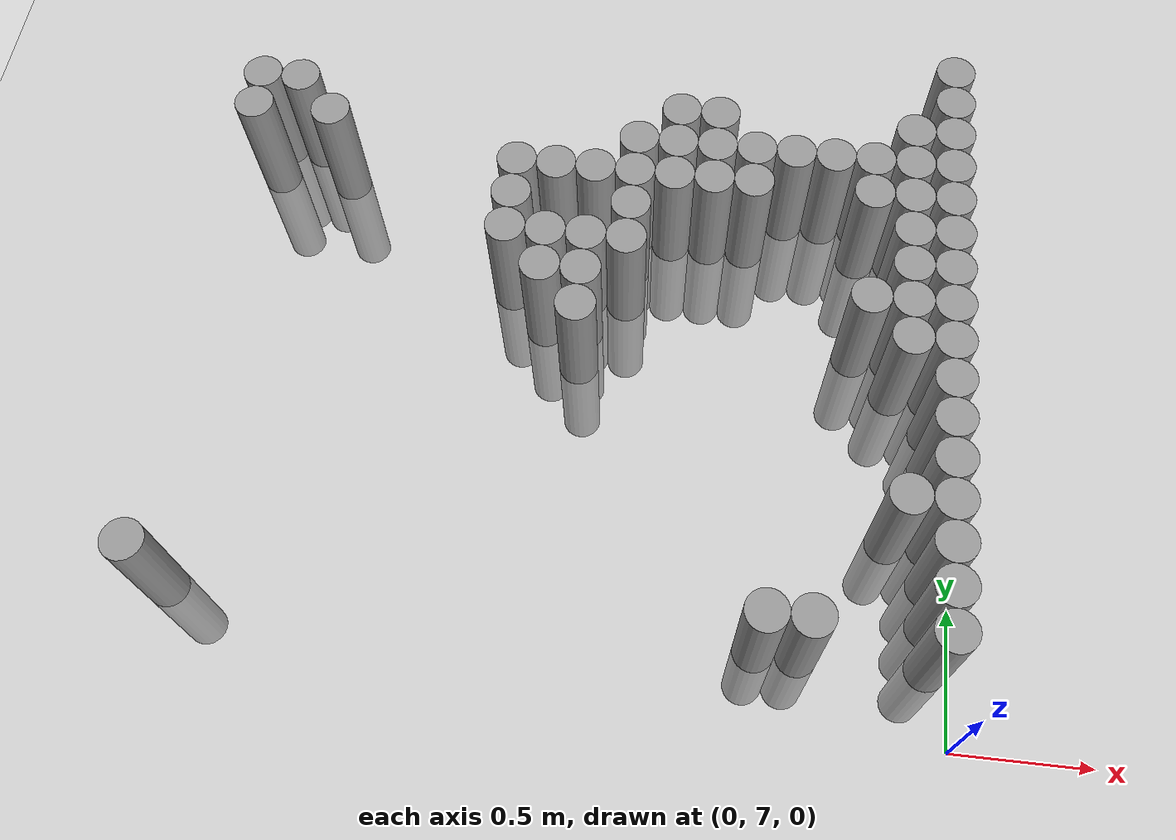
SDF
<sdf version="1.6">
 <world name="default">
  <model name="ground_plane">
   <static>1</static>
   <static>1</static>
   <link name="link">
    <collision name="collision">
     <geometry><plane><normal>0 0 1</normal><size>100 100</size></plane></geometry>
     <surface><friction><ode><mu>100</mu><mu2>50</mu2></ode></friction></surface>
    </collision>
    <visual name="visual">
     <cast_shadows>0</cast_shadows>
     <geometry><plane><normal>0 0 1</normal><size>100 100</size></plane></geometry>
     <material>
      <script><uri>file://media/materials/scripts/gazebo.material</uri><name>Gazebo/Grey</name></script>
     </material>
    </visual>
   </link>
  </model>
  <model name="unit_cylinder_186">
   <static>1</static>
   <pose>-2.775000 7.275000 0.000000 0.000000 0.000000 0.000000</pose>
   <link name="link">
    <inertial>
     <mass>1</mass>
     <inertia><ixx>0.145833</ixx><ixy>0</ixy><ixz>0</ixz><iyy>0.145833</iyy><iyz>0</iyz><izz>0.125</izz></inertia>
    </inertial>
    <collision name="collision">
     <geometry><cylinder><radius>0.075000</radius><length>1</length></cylinder></geometry>
    </collision>
    <visual name="visual">
     <geometry><cylinder><radius>0.075000</radius><length>1</length></cylinder></geometry>
     <material>
      <script><name>Gazebo/Grey</name><uri>file://media/materials/scripts/gazebo.material</uri></script>
     </material>
    </visual>
   </link>
  </model>
  <model name="unit_cylinder_187">
   <static>1</static>
   <pose>-2.775000 9.075000 0.000000 0.000000 0.000000 0.000000</pose>
   <link name="link">
    <inertial>
     <mass>1</mass>
     <inertia><ixx>0.145833</ixx><ixy>0</ixy><ixz>0</ixz><iyy>0.145833</iyy><iyz>0</iyz><izz>0.125</izz></inertia>
    </inertial>
    <collision name="collision">
     <geometry><cylinder><radius>0.075000</radius><length>1</length></cylinder></geometry>
    </collision>
    <visual name="visual">
     <geometry><cylinder><radius>0.075000</radius><length>1</length></cylinder></geometry>
     <material>
      <script><name>Gazebo/Grey</name><uri>file://media/materials/scripts/gazebo.material</uri></script>
     </material>
    </visual>
   </link>
  </model>
  <model name="unit_cylinder_188">
   <static>1</static>
   <pose>-2.775000 9.225000 0.000000 0.000000 0.000000 0.000000</pose>
   <link name="link">
    <inertial>
     <mass>1</mass>
     <inertia><ixx>0.145833</ixx><ixy>0</ixy><ixz>0</ixz><iyy>0.145833</iyy><iyz>0</iyz><izz>0.125</izz></inertia>
    </inertial>
    <collision name="collision">
     <geometry><cylinder><radius>0.075000</radius><length>1</length></cylinder></geometry>
    </collision>
    <visual name="visual">
     <geometry><cylinder><radius>0.075000</radius><length>1</length></cylinder></geometry>
     <material>
      <script><name>Gazebo/Grey</name><uri>file://media/materials/scripts/gazebo.material</uri></script>
     </material>
    </visual>
   </link>
  </model>
  <model name="unit_cylinder_191">
   <static>1</static>
   <pose>-2.625000 9.225000 0.000000 0.000000 0.000000 0.000000</pose>
   <link name="link">
    <inertial>
     <mass>1</mass>
     <inertia><ixx>0.145833</ixx><ixy>0</ixy><ixz>0</ixz><iyy>0.145833</iyy><iyz>0</iyz><izz>0.125</izz></inertia>
    </inertial>
    <collision name="collision">
     <geometry><cylinder><radius>0.075000</radius><length>1</length></cylinder></geometry>
    </collision>
    <visual name="visual">
     <geometry><cylinder><radius>0.075000</radius><length>1</length></cylinder></geometry>
     <material>
      <script><name>Gazebo/Grey</name><uri>file://media/materials/scripts/gazebo.material</uri></script>
     </material>
    </visual>
   </link>
  </model>
  <model name="unit_cylinder_192">
   <static>1</static>
   <pose>-2.475000 9.075000 0.000000 0.000000 0.000000 0.000000</pose>
   <link name="link">
    <inertial>
     <mass>1</mass>
     <inertia><ixx>0.145833</ixx><ixy>0</ixy><ixz>0</ixz><iyy>0.145833</iyy><iyz>0</iyz><izz>0.125</izz></inertia>
    </inertial>
    <collision name="collision">
     <geometry><cylinder><radius>0.075000</radius><length>1</length></cylinder></geometry>
    </collision>
    <visual name="visual">
     <geometry><cylinder><radius>0.075000</radius><length>1</length></cylinder></geometry>
     <material>
      <script><name>Gazebo/Grey</name><uri>file://media/materials/scripts/gazebo.material</uri></script>
     </material>
    </visual>
   </link>
  </model>
  <model name="unit_cylinder_205">
   <static>1</static>
   <pose>-1.725000 8.625000 0.000000 0.000000 0.000000 0.000000</pose>
   <link name="link">
    <inertial>
     <mass>1</mass>
     <inertia><ixx>0.145833</ixx><ixy>0</ixy><ixz>0</ixz><iyy>0.145833</iyy><iyz>0</iyz><izz>0.125</izz></inertia>
    </inertial>
    <collision name="collision">
     <geometry><cylinder><radius>0.075000</radius><length>1</length></cylinder></geometry>
    </collision>
    <visual name="visual">
     <geometry><cylinder><radius>0.075000</radius><length>1</length></cylinder></geometry>
     <material>
      <script><name>Gazebo/Grey</name><uri>file://media/materials/scripts/gazebo.material</uri></script>
     </material>
    </visual>
   </link>
  </model>
  <model name="unit_cylinder_206">
   <static>1</static>
   <pose>-1.725000 8.775000 0.000000 0.000000 0.000000 0.000000</pose>
   <link name="link">
    <inertial>
     <mass>1</mass>
     <inertia><ixx>0.145833</ixx><ixy>0</ixy><ixz>0</ixz><iyy>0.145833</iyy><iyz>0</iyz><izz>0.125</izz></inertia>
    </inertial>
    <collision name="collision">
     <geometry><cylinder><radius>0.075000</radius><length>1</length></cylinder></geometry>
    </collision>
    <visual name="visual">
     <geometry><cylinder><radius>0.075000</radius><length>1</length></cylinder></geometry>
     <material>
      <script><name>Gazebo/Grey</name><uri>file://media/materials/scripts/gazebo.material</uri></script>
     </material>
    </visual>
   </link>
  </model>
  <model name="unit_cylinder_207">
   <static>1</static>
   <pose>-1.725000 8.925000 0.000000 0.000000 0.000000 0.000000</pose>
   <link name="link">
    <inertial>
     <mass>1</mass>
     <inertia><ixx>0.145833</ixx><ixy>0</ixy><ixz>0</ixz><iyy>0.145833</iyy><iyz>0</iyz><izz>0.125</izz></inertia>
    </inertial>
    <collision name="collision">
     <geometry><cylinder><radius>0.075000</radius><length>1</length></cylinder></geometry>
    </collision>
    <visual name="visual">
     <geometry><cylinder><radius>0.075000</radius><length>1</length></cylinder></geometry>
     <material>
      <script><name>Gazebo/Grey</name><uri>file://media/materials/scripts/gazebo.material</uri></script>
     </material>
    </visual>
   </link>
  </model>
  <model name="unit_cylinder_211">
   <static>1</static>
   <pose>-1.575000 8.475000 0.000000 0.000000 0.000000 0.000000</pose>
   <link name="link">
    <inertial>
     <mass>1</mass>
     <inertia><ixx>0.145833</ixx><ixy>0</ixy><ixz>0</ixz><iyy>0.145833</iyy><iyz>0</iyz><izz>0.125</izz></inertia>
    </inertial>
    <collision name="collision">
     <geometry><cylinder><radius>0.075000</radius><length>1</length></cylinder></geometry>
    </collision>
    <visual name="visual">
     <geometry><cylinder><radius>0.075000</radius><length>1</length></cylinder></geometry>
     <material>
      <script><name>Gazebo/Grey</name><uri>file://media/materials/scripts/gazebo.material</uri></script>
     </material>
    </visual>
   </link>
  </model>
  <model name="unit_cylinder_212">
   <static>1</static>
   <pose>-1.575000 8.625000 0.000000 0.000000 0.000000 0.000000</pose>
   <link name="link">
    <inertial>
     <mass>1</mass>
     <inertia><ixx>0.145833</ixx><ixy>0</ixy><ixz>0</ixz><iyy>0.145833</iyy><iyz>0</iyz><izz>0.125</izz></inertia>
    </inertial>
    <collision name="collision">
     <geometry><cylinder><radius>0.075000</radius><length>1</length></cylinder></geometry>
    </collision>
    <visual name="visual">
     <geometry><cylinder><radius>0.075000</radius><length>1</length></cylinder></geometry>
     <material>
      <script><name>Gazebo/Grey</name><uri>file://media/materials/scripts/gazebo.material</uri></script>
     </material>
    </visual>
   </link>
  </model>
  <model name="unit_cylinder_213">
   <static>1</static>
   <pose>-1.575000 8.925000 0.000000 0.000000 0.000000 0.000000</pose>
   <link name="link">
    <inertial>
     <mass>1</mass>
     <inertia><ixx>0.145833</ixx><ixy>0</ixy><ixz>0</ixz><iyy>0.145833</iyy><iyz>0</iyz><izz>0.125</izz></inertia>
    </inertial>
    <collision name="collision">
     <geometry><cylinder><radius>0.075000</radius><length>1</length></cylinder></geometry>
    </collision>
    <visual name="visual">
     <geometry><cylinder><radius>0.075000</radius><length>1</length></cylinder></geometry>
     <material>
      <script><name>Gazebo/Grey</name><uri>file://media/materials/scripts/gazebo.material</uri></script>
     </material>
    </visual>
   </link>
  </model>
  <model name="unit_cylinder_219">
   <static>1</static>
   <pose>-1.425000 8.325000 0.000000 0.000000 0.000000 0.000000</pose>
   <link name="link">
    <inertial>
     <mass>1</mass>
     <inertia><ixx>0.145833</ixx><ixy>0</ixy><ixz>0</ixz><iyy>0.145833</iyy><iyz>0</iyz><izz>0.125</izz></inertia>
    </inertial>
    <collision name="collision">
     <geometry><cylinder><radius>0.075000</radius><length>1</length></cylinder></geometry>
    </collision>
    <visual name="visual">
     <geometry><cylinder><radius>0.075000</radius><length>1</length></cylinder></geometry>
     <material>
      <script><name>Gazebo/Grey</name><uri>file://media/materials/scripts/gazebo.material</uri></script>
     </material>
    </visual>
   </link>
  </model>
  <model name="unit_cylinder_220">
   <static>1</static>
   <pose>-1.425000 8.475000 0.000000 0.000000 0.000000 0.000000</pose>
   <link name="link">
    <inertial>
     <mass>1</mass>
     <inertia><ixx>0.145833</ixx><ixy>0</ixy><ixz>0</ixz><iyy>0.145833</iyy><iyz>0</iyz><izz>0.125</izz></inertia>
    </inertial>
    <collision name="collision">
     <geometry><cylinder><radius>0.075000</radius><length>1</length></cylinder></geometry>
    </collision>
    <visual name="visual">
     <geometry><cylinder><radius>0.075000</radius><length>1</length></cylinder></geometry>
     <material>
      <script><name>Gazebo/Grey</name><uri>file://media/materials/scripts/gazebo.material</uri></script>
     </material>
    </visual>
   </link>
  </model>
  <model name="unit_cylinder_221">
   <static>1</static>
   <pose>-1.425000 8.625000 0.000000 0.000000 0.000000 0.000000</pose>
   <link name="link">
    <inertial>
     <mass>1</mass>
     <inertia><ixx>0.145833</ixx><ixy>0</ixy><ixz>0</ixz><iyy>0.145833</iyy><iyz>0</iyz><izz>0.125</izz></inertia>
    </inertial>
    <collision name="collision">
     <geometry><cylinder><radius>0.075000</radius><length>1</length></cylinder></geometry>
    </collision>
    <visual name="visual">
     <geometry><cylinder><radius>0.075000</radius><length>1</length></cylinder></geometry>
     <material>
      <script><name>Gazebo/Grey</name><uri>file://media/materials/scripts/gazebo.material</uri></script>
     </material>
    </visual>
   </link>
  </model>
  <model name="unit_cylinder_222">
   <static>1</static>
   <pose>-1.425000 8.925000 0.000000 0.000000 0.000000 0.000000</pose>
   <link name="link">
    <inertial>
     <mass>1</mass>
     <inertia><ixx>0.145833</ixx><ixy>0</ixy><ixz>0</ixz><iyy>0.145833</iyy><iyz>0</iyz><izz>0.125</izz></inertia>
    </inertial>
    <collision name="collision">
     <geometry><cylinder><radius>0.075000</radius><length>1</length></cylinder></geometry>
    </collision>
    <visual name="visual">
     <geometry><cylinder><radius>0.075000</radius><length>1</length></cylinder></geometry>
     <material>
      <script><name>Gazebo/Grey</name><uri>file://media/materials/scripts/gazebo.material</uri></script>
     </material>
    </visual>
   </link>
  </model>
  <model name="unit_cylinder_225">
   <static>1</static>
   <pose>-1.275000 8.625000 0.000000 0.000000 0.000000 0.000000</pose>
   <link name="link">
    <inertial>
     <mass>1</mass>
     <inertia><ixx>0.145833</ixx><ixy>0</ixy><ixz>0</ixz><iyy>0.145833</iyy><iyz>0</iyz><izz>0.125</izz></inertia>
    </inertial>
    <collision name="collision">
     <geometry><cylinder><radius>0.075000</radius><length>1</length></cylinder></geometry>
    </collision>
    <visual name="visual">
     <geometry><cylinder><radius>0.075000</radius><length>1</length></cylinder></geometry>
     <material>
      <script><name>Gazebo/Grey</name><uri>file://media/materials/scripts/gazebo.material</uri></script>
     </material>
    </visual>
   </link>
  </model>
  <model name="unit_cylinder_226">
   <static>1</static>
   <pose>-1.275000 8.775000 0.000000 0.000000 0.000000 0.000000</pose>
   <link name="link">
    <inertial>
     <mass>1</mass>
     <inertia><ixx>0.145833</ixx><ixy>0</ixy><ixz>0</ixz><iyy>0.145833</iyy><iyz>0</iyz><izz>0.125</izz></inertia>
    </inertial>
    <collision name="collision">
     <geometry><cylinder><radius>0.075000</radius><length>1</length></cylinder></geometry>
    </collision>
    <visual name="visual">
     <geometry><cylinder><radius>0.075000</radius><length>1</length></cylinder></geometry>
     <material>
      <script><name>Gazebo/Grey</name><uri>file://media/materials/scripts/gazebo.material</uri></script>
     </material>
    </visual>
   </link>
  </model>
  <model name="unit_cylinder_227">
   <static>1</static>
   <pose>-1.275000 8.925000 0.000000 0.000000 0.000000 0.000000</pose>
   <link name="link">
    <inertial>
     <mass>1</mass>
     <inertia><ixx>0.145833</ixx><ixy>0</ixy><ixz>0</ixz><iyy>0.145833</iyy><iyz>0</iyz><izz>0.125</izz></inertia>
    </inertial>
    <collision name="collision">
     <geometry><cylinder><radius>0.075000</radius><length>1</length></cylinder></geometry>
    </collision>
    <visual name="visual">
     <geometry><cylinder><radius>0.075000</radius><length>1</length></cylinder></geometry>
     <material>
      <script><name>Gazebo/Grey</name><uri>file://media/materials/scripts/gazebo.material</uri></script>
     </material>
    </visual>
   </link>
  </model>
  <model name="unit_cylinder_228">
   <static>1</static>
   <pose>-1.275000 9.075000 0.000000 0.000000 0.000000 0.000000</pose>
   <link name="link">
    <inertial>
     <mass>1</mass>
     <inertia><ixx>0.145833</ixx><ixy>0</ixy><ixz>0</ixz><iyy>0.145833</iyy><iyz>0</iyz><izz>0.125</izz></inertia>
    </inertial>
    <collision name="collision">
     <geometry><cylinder><radius>0.075000</radius><length>1</length></cylinder></geometry>
    </collision>
    <visual name="visual">
     <geometry><cylinder><radius>0.075000</radius><length>1</length></cylinder></geometry>
     <material>
      <script><name>Gazebo/Grey</name><uri>file://media/materials/scripts/gazebo.material</uri></script>
     </material>
    </visual>
   </link>
  </model>
  <model name="unit_cylinder_229">
   <static>1</static>
   <pose>-1.125000 8.925000 0.000000 0.000000 0.000000 0.000000</pose>
   <link name="link">
    <inertial>
     <mass>1</mass>
     <inertia><ixx>0.145833</ixx><ixy>0</ixy><ixz>0</ixz><iyy>0.145833</iyy><iyz>0</iyz><izz>0.125</izz></inertia>
    </inertial>
    <collision name="collision">
     <geometry><cylinder><radius>0.075000</radius><length>1</length></cylinder></geometry>
    </collision>
    <visual name="visual">
     <geometry><cylinder><radius>0.075000</radius><length>1</length></cylinder></geometry>
     <material>
      <script><name>Gazebo/Grey</name><uri>file://media/materials/scripts/gazebo.material</uri></script>
     </material>
    </visual>
   </link>
  </model>
  <model name="unit_cylinder_230">
   <static>1</static>
   <pose>-1.125000 9.075000 0.000000 0.000000 0.000000 0.000000</pose>
   <link name="link">
    <inertial>
     <mass>1</mass>
     <inertia><ixx>0.145833</ixx><ixy>0</ixy><ixz>0</ixz><iyy>0.145833</iyy><iyz>0</iyz><izz>0.125</izz></inertia>
    </inertial>
    <collision name="collision">
     <geometry><cylinder><radius>0.075000</radius><length>1</length></cylinder></geometry>
    </collision>
    <visual name="visual">
     <geometry><cylinder><radius>0.075000</radius><length>1</length></cylinder></geometry>
     <material>
      <script><name>Gazebo/Grey</name><uri>file://media/materials/scripts/gazebo.material</uri></script>
     </material>
    </visual>
   </link>
  </model>
  <model name="unit_cylinder_231">
   <static>1</static>
   <pose>-1.125000 9.225000 0.000000 0.000000 0.000000 0.000000</pose>
   <link name="link">
    <inertial>
     <mass>1</mass>
     <inertia><ixx>0.145833</ixx><ixy>0</ixy><ixz>0</ixz><iyy>0.145833</iyy><iyz>0</iyz><izz>0.125</izz></inertia>
    </inertial>
    <collision name="collision">
     <geometry><cylinder><radius>0.075000</radius><length>1</length></cylinder></geometry>
    </collision>
    <visual name="visual">
     <geometry><cylinder><radius>0.075000</radius><length>1</length></cylinder></geometry>
     <material>
      <script><name>Gazebo/Grey</name><uri>file://media/materials/scripts/gazebo.material</uri></script>
     </material>
    </visual>
   </link>
  </model>
  <model name="unit_cylinder_232">
   <static>1</static>
   <pose>-0.975000 8.925000 0.000000 0.000000 0.000000 0.000000</pose>
   <link name="link">
    <inertial>
     <mass>1</mass>
     <inertia><ixx>0.145833</ixx><ixy>0</ixy><ixz>0</ixz><iyy>0.145833</iyy><iyz>0</iyz><izz>0.125</izz></inertia>
    </inertial>
    <collision name="collision">
     <geometry><cylinder><radius>0.075000</radius><length>1</length></cylinder></geometry>
    </collision>
    <visual name="visual">
     <geometry><cylinder><radius>0.075000</radius><length>1</length></cylinder></geometry>
     <material>
      <script><name>Gazebo/Grey</name><uri>file://media/materials/scripts/gazebo.material</uri></script>
     </material>
    </visual>
   </link>
  </model>
  <model name="unit_cylinder_233">
   <static>1</static>
   <pose>-0.975000 9.075000 0.000000 0.000000 0.000000 0.000000</pose>
   <link name="link">
    <inertial>
     <mass>1</mass>
     <inertia><ixx>0.145833</ixx><ixy>0</ixy><ixz>0</ixz><iyy>0.145833</iyy><iyz>0</iyz><izz>0.125</izz></inertia>
    </inertial>
    <collision name="collision">
     <geometry><cylinder><radius>0.075000</radius><length>1</length></cylinder></geometry>
    </collision>
    <visual name="visual">
     <geometry><cylinder><radius>0.075000</radius><length>1</length></cylinder></geometry>
     <material>
      <script><name>Gazebo/Grey</name><uri>file://media/materials/scripts/gazebo.material</uri></script>
     </material>
    </visual>
   </link>
  </model>
  <model name="unit_cylinder_234">
   <static>1</static>
   <pose>-0.975000 9.225000 0.000000 0.000000 0.000000 0.000000</pose>
   <link name="link">
    <inertial>
     <mass>1</mass>
     <inertia><ixx>0.145833</ixx><ixy>0</ixy><ixz>0</ixz><iyy>0.145833</iyy><iyz>0</iyz><izz>0.125</izz></inertia>
    </inertial>
    <collision name="collision">
     <geometry><cylinder><radius>0.075000</radius><length>1</length></cylinder></geometry>
    </collision>
    <visual name="visual">
     <geometry><cylinder><radius>0.075000</radius><length>1</length></cylinder></geometry>
     <material>
      <script><name>Gazebo/Grey</name><uri>file://media/materials/scripts/gazebo.material</uri></script>
     </material>
    </visual>
   </link>
  </model>
  <model name="unit_cylinder_235">
   <static>1</static>
   <pose>-0.825000 8.925000 0.000000 0.000000 0.000000 0.000000</pose>
   <link name="link">
    <inertial>
     <mass>1</mass>
     <inertia><ixx>0.145833</ixx><ixy>0</ixy><ixz>0</ixz><iyy>0.145833</iyy><iyz>0</iyz><izz>0.125</izz></inertia>
    </inertial>
    <collision name="collision">
     <geometry><cylinder><radius>0.075000</radius><length>1</length></cylinder></geometry>
    </collision>
    <visual name="visual">
     <geometry><cylinder><radius>0.075000</radius><length>1</length></cylinder></geometry>
     <material>
      <script><name>Gazebo/Grey</name><uri>file://media/materials/scripts/gazebo.material</uri></script>
     </material>
    </visual>
   </link>
  </model>
  <model name="unit_cylinder_236">
   <static>1</static>
   <pose>-0.825000 9.075000 0.000000 0.000000 0.000000 0.000000</pose>
   <link name="link">
    <inertial>
     <mass>1</mass>
     <inertia><ixx>0.145833</ixx><ixy>0</ixy><ixz>0</ixz><iyy>0.145833</iyy><iyz>0</iyz><izz>0.125</izz></inertia>
    </inertial>
    <collision name="collision">
     <geometry><cylinder><radius>0.075000</radius><length>1</length></cylinder></geometry>
    </collision>
    <visual name="visual">
     <geometry><cylinder><radius>0.075000</radius><length>1</length></cylinder></geometry>
     <material>
      <script><name>Gazebo/Grey</name><uri>file://media/materials/scripts/gazebo.material</uri></script>
     </material>
    </visual>
   </link>
  </model>
  <model name="unit_cylinder_238">
   <static>1</static>
   <pose>-0.675000 7.275000 0.000000 0.000000 0.000000 0.000000</pose>
   <link name="link">
    <inertial>
     <mass>1</mass>
     <inertia><ixx>0.145833</ixx><ixy>0</ixy><ixz>0</ixz><iyy>0.145833</iyy><iyz>0</iyz><izz>0.125</izz></inertia>
    </inertial>
    <collision name="collision">
     <geometry><cylinder><radius>0.075000</radius><length>1</length></cylinder></geometry>
    </collision>
    <visual name="visual">
     <geometry><cylinder><radius>0.075000</radius><length>1</length></cylinder></geometry>
     <material>
      <script><name>Gazebo/Grey</name><uri>file://media/materials/scripts/gazebo.material</uri></script>
     </material>
    </visual>
   </link>
  </model>
  <model name="unit_cylinder_239">
   <static>1</static>
   <pose>-0.675000 9.075000 0.000000 0.000000 0.000000 0.000000</pose>
   <link name="link">
    <inertial>
     <mass>1</mass>
     <inertia><ixx>0.145833</ixx><ixy>0</ixy><ixz>0</ixz><iyy>0.145833</iyy><iyz>0</iyz><izz>0.125</izz></inertia>
    </inertial>
    <collision name="collision">
     <geometry><cylinder><radius>0.075000</radius><length>1</length></cylinder></geometry>
    </collision>
    <visual name="visual">
     <geometry><cylinder><radius>0.075000</radius><length>1</length></cylinder></geometry>
     <material>
      <script><name>Gazebo/Grey</name><uri>file://media/materials/scripts/gazebo.material</uri></script>
     </material>
    </visual>
   </link>
  </model>
  <model name="unit_cylinder_240">
   <static>1</static>
   <pose>-0.525000 7.275000 0.000000 0.000000 0.000000 0.000000</pose>
   <link name="link">
    <inertial>
     <mass>1</mass>
     <inertia><ixx>0.145833</ixx><ixy>0</ixy><ixz>0</ixz><iyy>0.145833</iyy><iyz>0</iyz><izz>0.125</izz></inertia>
    </inertial>
    <collision name="collision">
     <geometry><cylinder><radius>0.075000</radius><length>1</length></cylinder></geometry>
    </collision>
    <visual name="visual">
     <geometry><cylinder><radius>0.075000</radius><length>1</length></cylinder></geometry>
     <material>
      <script><name>Gazebo/Grey</name><uri>file://media/materials/scripts/gazebo.material</uri></script>
     </material>
    </visual>
   </link>
  </model>
  <model name="unit_cylinder_241">
   <static>1</static>
   <pose>-0.525000 9.075000 0.000000 0.000000 0.000000 0.000000</pose>
   <link name="link">
    <inertial>
     <mass>1</mass>
     <inertia><ixx>0.145833</ixx><ixy>0</ixy><ixz>0</ixz><iyy>0.145833</iyy><iyz>0</iyz><izz>0.125</izz></inertia>
    </inertial>
    <collision name="collision">
     <geometry><cylinder><radius>0.075000</radius><length>1</length></cylinder></geometry>
    </collision>
    <visual name="visual">
     <geometry><cylinder><radius>0.075000</radius><length>1</length></cylinder></geometry>
     <material>
      <script><name>Gazebo/Grey</name><uri>file://media/materials/scripts/gazebo.material</uri></script>
     </material>
    </visual>
   </link>
  </model>
  <model name="unit_cylinder_242">
   <static>1</static>
   <pose>-0.375000 8.475000 0.000000 0.000000 0.000000 0.000000</pose>
   <link name="link">
    <inertial>
     <mass>1</mass>
     <inertia><ixx>0.145833</ixx><ixy>0</ixy><ixz>0</ixz><iyy>0.145833</iyy><iyz>0</iyz><izz>0.125</izz></inertia>
    </inertial>
    <collision name="collision">
     <geometry><cylinder><radius>0.075000</radius><length>1</length></cylinder></geometry>
    </collision>
    <visual name="visual">
     <geometry><cylinder><radius>0.075000</radius><length>1</length></cylinder></geometry>
     <material>
      <script><name>Gazebo/Grey</name><uri>file://media/materials/scripts/gazebo.material</uri></script>
     </material>
    </visual>
   </link>
  </model>
  <model name="unit_cylinder_243">
   <static>1</static>
   <pose>-0.375000 8.925000 0.000000 0.000000 0.000000 0.000000</pose>
   <link name="link">
    <inertial>
     <mass>1</mass>
     <inertia><ixx>0.145833</ixx><ixy>0</ixy><ixz>0</ixz><iyy>0.145833</iyy><iyz>0</iyz><izz>0.125</izz></inertia>
    </inertial>
    <collision name="collision">
     <geometry><cylinder><radius>0.075000</radius><length>1</length></cylinder></geometry>
    </collision>
    <visual name="visual">
     <geometry><cylinder><radius>0.075000</radius><length>1</length></cylinder></geometry>
     <material>
      <script><name>Gazebo/Grey</name><uri>file://media/materials/scripts/gazebo.material</uri></script>
     </material>
    </visual>
   </link>
  </model>
  <model name="unit_cylinder_244">
   <static>1</static>
   <pose>-0.375000 9.075000 0.000000 0.000000 0.000000 0.000000</pose>
   <link name="link">
    <inertial>
     <mass>1</mass>
     <inertia><ixx>0.145833</ixx><ixy>0</ixy><ixz>0</ixz><iyy>0.145833</iyy><iyz>0</iyz><izz>0.125</izz></inertia>
    </inertial>
    <collision name="collision">
     <geometry><cylinder><radius>0.075000</radius><length>1</length></cylinder></geometry>
    </collision>
    <visual name="visual">
     <geometry><cylinder><radius>0.075000</radius><length>1</length></cylinder></geometry>
     <material>
      <script><name>Gazebo/Grey</name><uri>file://media/materials/scripts/gazebo.material</uri></script>
     </material>
    </visual>
   </link>
  </model>
  <model name="unit_cylinder_253">
   <static>1</static>
   <pose>-0.225000 7.725000 0.000000 0.000000 0.000000 0.000000</pose>
   <link name="link">
    <inertial>
     <mass>1</mass>
     <inertia><ixx>0.145833</ixx><ixy>0</ixy><ixz>0</ixz><iyy>0.145833</iyy><iyz>0</iyz><izz>0.125</izz></inertia>
    </inertial>
    <collision name="collision">
     <geometry><cylinder><radius>0.075000</radius><length>1</length></cylinder></geometry>
    </collision>
    <visual name="visual">
     <geometry><cylinder><radius>0.075000</radius><length>1</length></cylinder></geometry>
     <material>
      <script><name>Gazebo/Grey</name><uri>file://media/materials/scripts/gazebo.material</uri></script>
     </material>
    </visual>
   </link>
  </model>
  <model name="unit_cylinder_254">
   <static>1</static>
   <pose>-0.225000 8.325000 0.000000 0.000000 0.000000 0.000000</pose>
   <link name="link">
    <inertial>
     <mass>1</mass>
     <inertia><ixx>0.145833</ixx><ixy>0</ixy><ixz>0</ixz><iyy>0.145833</iyy><iyz>0</iyz><izz>0.125</izz></inertia>
    </inertial>
    <collision name="collision">
     <geometry><cylinder><radius>0.075000</radius><length>1</length></cylinder></geometry>
    </collision>
    <visual name="visual">
     <geometry><cylinder><radius>0.075000</radius><length>1</length></cylinder></geometry>
     <material>
      <script><name>Gazebo/Grey</name><uri>file://media/materials/scripts/gazebo.material</uri></script>
     </material>
    </visual>
   </link>
  </model>
  <model name="unit_cylinder_255">
   <static>1</static>
   <pose>-0.225000 8.475000 0.000000 0.000000 0.000000 0.000000</pose>
   <link name="link">
    <inertial>
     <mass>1</mass>
     <inertia><ixx>0.145833</ixx><ixy>0</ixy><ixz>0</ixz><iyy>0.145833</iyy><iyz>0</iyz><izz>0.125</izz></inertia>
    </inertial>
    <collision name="collision">
     <geometry><cylinder><radius>0.075000</radius><length>1</length></cylinder></geometry>
    </collision>
    <visual name="visual">
     <geometry><cylinder><radius>0.075000</radius><length>1</length></cylinder></geometry>
     <material>
      <script><name>Gazebo/Grey</name><uri>file://media/materials/scripts/gazebo.material</uri></script>
     </material>
    </visual>
   </link>
  </model>
  <model name="unit_cylinder_256">
   <static>1</static>
   <pose>-0.225000 8.625000 0.000000 0.000000 0.000000 0.000000</pose>
   <link name="link">
    <inertial>
     <mass>1</mass>
     <inertia><ixx>0.145833</ixx><ixy>0</ixy><ixz>0</ixz><iyy>0.145833</iyy><iyz>0</iyz><izz>0.125</izz></inertia>
    </inertial>
    <collision name="collision">
     <geometry><cylinder><radius>0.075000</radius><length>1</length></cylinder></geometry>
    </collision>
    <visual name="visual">
     <geometry><cylinder><radius>0.075000</radius><length>1</length></cylinder></geometry>
     <material>
      <script><name>Gazebo/Grey</name><uri>file://media/materials/scripts/gazebo.material</uri></script>
     </material>
    </visual>
   </link>
  </model>
  <model name="unit_cylinder_257">
   <static>1</static>
   <pose>-0.225000 8.775000 0.000000 0.000000 0.000000 0.000000</pose>
   <link name="link">
    <inertial>
     <mass>1</mass>
     <inertia><ixx>0.145833</ixx><ixy>0</ixy><ixz>0</ixz><iyy>0.145833</iyy><iyz>0</iyz><izz>0.125</izz></inertia>
    </inertial>
    <collision name="collision">
     <geometry><cylinder><radius>0.075000</radius><length>1</length></cylinder></geometry>
    </collision>
    <visual name="visual">
     <geometry><cylinder><radius>0.075000</radius><length>1</length></cylinder></geometry>
     <material>
      <script><name>Gazebo/Grey</name><uri>file://media/materials/scripts/gazebo.material</uri></script>
     </material>
    </visual>
   </link>
  </model>
  <model name="unit_cylinder_258">
   <static>1</static>
   <pose>-0.225000 8.925000 0.000000 0.000000 0.000000 0.000000</pose>
   <link name="link">
    <inertial>
     <mass>1</mass>
     <inertia><ixx>0.145833</ixx><ixy>0</ixy><ixz>0</ixz><iyy>0.145833</iyy><iyz>0</iyz><izz>0.125</izz></inertia>
    </inertial>
    <collision name="collision">
     <geometry><cylinder><radius>0.075000</radius><length>1</length></cylinder></geometry>
    </collision>
    <visual name="visual">
     <geometry><cylinder><radius>0.075000</radius><length>1</length></cylinder></geometry>
     <material>
      <script><name>Gazebo/Grey</name><uri>file://media/materials/scripts/gazebo.material</uri></script>
     </material>
    </visual>
   </link>
  </model>
  <model name="unit_cylinder_259">
   <static>1</static>
   <pose>-0.225000 9.075000 0.000000 0.000000 0.000000 0.000000</pose>
   <link name="link">
    <inertial>
     <mass>1</mass>
     <inertia><ixx>0.145833</ixx><ixy>0</ixy><ixz>0</ixz><iyy>0.145833</iyy><iyz>0</iyz><izz>0.125</izz></inertia>
    </inertial>
    <collision name="collision">
     <geometry><cylinder><radius>0.075000</radius><length>1</length></cylinder></geometry>
    </collision>
    <visual name="visual">
     <geometry><cylinder><radius>0.075000</radius><length>1</length></cylinder></geometry>
     <material>
      <script><name>Gazebo/Grey</name><uri>file://media/materials/scripts/gazebo.material</uri></script>
     </material>
    </visual>
   </link>
  </model>
  <model name="unit_cylinder_260">
   <static>1</static>
   <pose>-0.225000 9.225000 0.000000 0.000000 0.000000 0.000000</pose>
   <link name="link">
    <inertial>
     <mass>1</mass>
     <inertia><ixx>0.145833</ixx><ixy>0</ixy><ixz>0</ixz><iyy>0.145833</iyy><iyz>0</iyz><izz>0.125</izz></inertia>
    </inertial>
    <collision name="collision">
     <geometry><cylinder><radius>0.075000</radius><length>1</length></cylinder></geometry>
    </collision>
    <visual name="visual">
     <geometry><cylinder><radius>0.075000</radius><length>1</length></cylinder></geometry>
     <material>
      <script><name>Gazebo/Grey</name><uri>file://media/materials/scripts/gazebo.material</uri></script>
     </material>
    </visual>
   </link>
  </model>
  <model name="unit_cylinder_275">
   <static>1</static>
   <pose>-0.075000 7.275000 0.000000 0.000000 0.000000 0.000000</pose>
   <link name="link">
    <inertial>
     <mass>1</mass>
     <inertia><ixx>0.145833</ixx><ixy>0</ixy><ixz>0</ixz><iyy>0.145833</iyy><iyz>0</iyz><izz>0.125</izz></inertia>
    </inertial>
    <collision name="collision">
     <geometry><cylinder><radius>0.075000</radius><length>1</length></cylinder></geometry>
    </collision>
    <visual name="visual">
     <geometry><cylinder><radius>0.075000</radius><length>1</length></cylinder></geometry>
     <material>
      <script><name>Gazebo/Grey</name><uri>file://media/materials/scripts/gazebo.material</uri></script>
     </material>
    </visual>
   </link>
  </model>
  <model name="unit_cylinder_276">
   <static>1</static>
   <pose>-0.075000 7.425000 0.000000 0.000000 0.000000 0.000000</pose>
   <link name="link">
    <inertial>
     <mass>1</mass>
     <inertia><ixx>0.145833</ixx><ixy>0</ixy><ixz>0</ixz><iyy>0.145833</iyy><iyz>0</iyz><izz>0.125</izz></inertia>
    </inertial>
    <collision name="collision">
     <geometry><cylinder><radius>0.075000</radius><length>1</length></cylinder></geometry>
    </collision>
    <visual name="visual">
     <geometry><cylinder><radius>0.075000</radius><length>1</length></cylinder></geometry>
     <material>
      <script><name>Gazebo/Grey</name><uri>file://media/materials/scripts/gazebo.material</uri></script>
     </material>
    </visual>
   </link>
  </model>
  <model name="unit_cylinder_277">
   <static>1</static>
   <pose>-0.075000 7.575000 0.000000 0.000000 0.000000 0.000000</pose>
   <link name="link">
    <inertial>
     <mass>1</mass>
     <inertia><ixx>0.145833</ixx><ixy>0</ixy><ixz>0</ixz><iyy>0.145833</iyy><iyz>0</iyz><izz>0.125</izz></inertia>
    </inertial>
    <collision name="collision">
     <geometry><cylinder><radius>0.075000</radius><length>1</length></cylinder></geometry>
    </collision>
    <visual name="visual">
     <geometry><cylinder><radius>0.075000</radius><length>1</length></cylinder></geometry>
     <material>
      <script><name>Gazebo/Grey</name><uri>file://media/materials/scripts/gazebo.material</uri></script>
     </material>
    </visual>
   </link>
  </model>
  <model name="unit_cylinder_278">
   <static>1</static>
   <pose>-0.075000 7.725000 0.000000 0.000000 0.000000 0.000000</pose>
   <link name="link">
    <inertial>
     <mass>1</mass>
     <inertia><ixx>0.145833</ixx><ixy>0</ixy><ixz>0</ixz><iyy>0.145833</iyy><iyz>0</iyz><izz>0.125</izz></inertia>
    </inertial>
    <collision name="collision">
     <geometry><cylinder><radius>0.075000</radius><length>1</length></cylinder></geometry>
    </collision>
    <visual name="visual">
     <geometry><cylinder><radius>0.075000</radius><length>1</length></cylinder></geometry>
     <material>
      <script><name>Gazebo/Grey</name><uri>file://media/materials/scripts/gazebo.material</uri></script>
     </material>
    </visual>
   </link>
  </model>
  <model name="unit_cylinder_279">
   <static>1</static>
   <pose>-0.075000 7.875000 0.000000 0.000000 0.000000 0.000000</pose>
   <link name="link">
    <inertial>
     <mass>1</mass>
     <inertia><ixx>0.145833</ixx><ixy>0</ixy><ixz>0</ixz><iyy>0.145833</iyy><iyz>0</iyz><izz>0.125</izz></inertia>
    </inertial>
    <collision name="collision">
     <geometry><cylinder><radius>0.075000</radius><length>1</length></cylinder></geometry>
    </collision>
    <visual name="visual">
     <geometry><cylinder><radius>0.075000</radius><length>1</length></cylinder></geometry>
     <material>
      <script><name>Gazebo/Grey</name><uri>file://media/materials/scripts/gazebo.material</uri></script>
     </material>
    </visual>
   </link>
  </model>
  <model name="unit_cylinder_280">
   <static>1</static>
   <pose>-0.075000 8.025000 0.000000 0.000000 0.000000 0.000000</pose>
   <link name="link">
    <inertial>
     <mass>1</mass>
     <inertia><ixx>0.145833</ixx><ixy>0</ixy><ixz>0</ixz><iyy>0.145833</iyy><iyz>0</iyz><izz>0.125</izz></inertia>
    </inertial>
    <collision name="collision">
     <geometry><cylinder><radius>0.075000</radius><length>1</length></cylinder></geometry>
    </collision>
    <visual name="visual">
     <geometry><cylinder><radius>0.075000</radius><length>1</length></cylinder></geometry>
     <material>
      <script><name>Gazebo/Grey</name><uri>file://media/materials/scripts/gazebo.material</uri></script>
     </material>
    </visual>
   </link>
  </model>
  <model name="unit_cylinder_281">
   <static>1</static>
   <pose>-0.075000 8.175000 0.000000 0.000000 0.000000 0.000000</pose>
   <link name="link">
    <inertial>
     <mass>1</mass>
     <inertia><ixx>0.145833</ixx><ixy>0</ixy><ixz>0</ixz><iyy>0.145833</iyy><iyz>0</iyz><izz>0.125</izz></inertia>
    </inertial>
    <collision name="collision">
     <geometry><cylinder><radius>0.075000</radius><length>1</length></cylinder></geometry>
    </collision>
    <visual name="visual">
     <geometry><cylinder><radius>0.075000</radius><length>1</length></cylinder></geometry>
     <material>
      <script><name>Gazebo/Grey</name><uri>file://media/materials/scripts/gazebo.material</uri></script>
     </material>
    </visual>
   </link>
  </model>
  <model name="unit_cylinder_282">
   <static>1</static>
   <pose>-0.075000 8.325000 0.000000 0.000000 0.000000 0.000000</pose>
   <link name="link">
    <inertial>
     <mass>1</mass>
     <inertia><ixx>0.145833</ixx><ixy>0</ixy><ixz>0</ixz><iyy>0.145833</iyy><iyz>0</iyz><izz>0.125</izz></inertia>
    </inertial>
    <collision name="collision">
     <geometry><cylinder><radius>0.075000</radius><length>1</length></cylinder></geometry>
    </collision>
    <visual name="visual">
     <geometry><cylinder><radius>0.075000</radius><length>1</length></cylinder></geometry>
     <material>
      <script><name>Gazebo/Grey</name><uri>file://media/materials/scripts/gazebo.material</uri></script>
     </material>
    </visual>
   </link>
  </model>
  <model name="unit_cylinder_283">
   <static>1</static>
   <pose>-0.075000 8.475000 0.000000 0.000000 0.000000 0.000000</pose>
   <link name="link">
    <inertial>
     <mass>1</mass>
     <inertia><ixx>0.145833</ixx><ixy>0</ixy><ixz>0</ixz><iyy>0.145833</iyy><iyz>0</iyz><izz>0.125</izz></inertia>
    </inertial>
    <collision name="collision">
     <geometry><cylinder><radius>0.075000</radius><length>1</length></cylinder></geometry>
    </collision>
    <visual name="visual">
     <geometry><cylinder><radius>0.075000</radius><length>1</length></cylinder></geometry>
     <material>
      <script><name>Gazebo/Grey</name><uri>file://media/materials/scripts/gazebo.material</uri></script>
     </material>
    </visual>
   </link>
  </model>
  <model name="unit_cylinder_284">
   <static>1</static>
   <pose>-0.075000 8.625000 0.000000 0.000000 0.000000 0.000000</pose>
   <link name="link">
    <inertial>
     <mass>1</mass>
     <inertia><ixx>0.145833</ixx><ixy>0</ixy><ixz>0</ixz><iyy>0.145833</iyy><iyz>0</iyz><izz>0.125</izz></inertia>
    </inertial>
    <collision name="collision">
     <geometry><cylinder><radius>0.075000</radius><length>1</length></cylinder></geometry>
    </collision>
    <visual name="visual">
     <geometry><cylinder><radius>0.075000</radius><length>1</length></cylinder></geometry>
     <material>
      <script><name>Gazebo/Grey</name><uri>file://media/materials/scripts/gazebo.material</uri></script>
     </material>
    </visual>
   </link>
  </model>
  <model name="unit_cylinder_285">
   <static>1</static>
   <pose>-0.075000 8.775000 0.000000 0.000000 0.000000 0.000000</pose>
   <link name="link">
    <inertial>
     <mass>1</mass>
     <inertia><ixx>0.145833</ixx><ixy>0</ixy><ixz>0</ixz><iyy>0.145833</iyy><iyz>0</iyz><izz>0.125</izz></inertia>
    </inertial>
    <collision name="collision">
     <geometry><cylinder><radius>0.075000</radius><length>1</length></cylinder></geometry>
    </collision>
    <visual name="visual">
     <geometry><cylinder><radius>0.075000</radius><length>1</length></cylinder></geometry>
     <material>
      <script><name>Gazebo/Grey</name><uri>file://media/materials/scripts/gazebo.material</uri></script>
     </material>
    </visual>
   </link>
  </model>
  <model name="unit_cylinder_286">
   <static>1</static>
   <pose>-0.075000 8.925000 0.000000 0.000000 0.000000 0.000000</pose>
   <link name="link">
    <inertial>
     <mass>1</mass>
     <inertia><ixx>0.145833</ixx><ixy>0</ixy><ixz>0</ixz><iyy>0.145833</iyy><iyz>0</iyz><izz>0.125</izz></inertia>
    </inertial>
    <collision name="collision">
     <geometry><cylinder><radius>0.075000</radius><length>1</length></cylinder></geometry>
    </collision>
    <visual name="visual">
     <geometry><cylinder><radius>0.075000</radius><length>1</length></cylinder></geometry>
     <material>
      <script><name>Gazebo/Grey</name><uri>file://media/materials/scripts/gazebo.material</uri></script>
     </material>
    </visual>
   </link>
  </model>
  <model name="unit_cylinder_287">
   <static>1</static>
   <pose>-0.075000 9.075000 0.000000 0.000000 0.000000 0.000000</pose>
   <link name="link">
    <inertial>
     <mass>1</mass>
     <inertia><ixx>0.145833</ixx><ixy>0</ixy><ixz>0</ixz><iyy>0.145833</iyy><iyz>0</iyz><izz>0.125</izz></inertia>
    </inertial>
    <collision name="collision">
     <geometry><cylinder><radius>0.075000</radius><length>1</length></cylinder></geometry>
    </collision>
    <visual name="visual">
     <geometry><cylinder><radius>0.075000</radius><length>1</length></cylinder></geometry>
     <material>
      <script><name>Gazebo/Grey</name><uri>file://media/materials/scripts/gazebo.material</uri></script>
     </material>
    </visual>
   </link>
  </model>
  <model name="unit_cylinder_288">
   <static>1</static>
   <pose>-0.075000 9.225000 0.000000 0.000000 0.000000 0.000000</pose>
   <link name="link">
    <inertial>
     <mass>1</mass>
     <inertia><ixx>0.145833</ixx><ixy>0</ixy><ixz>0</ixz><iyy>0.145833</iyy><iyz>0</iyz><izz>0.125</izz></inertia>
    </inertial>
    <collision name="collision">
     <geometry><cylinder><radius>0.075000</radius><length>1</length></cylinder></geometry>
    </collision>
    <visual name="visual">
     <geometry><cylinder><radius>0.075000</radius><length>1</length></cylinder></geometry>
     <material>
      <script><name>Gazebo/Grey</name><uri>file://media/materials/scripts/gazebo.material</uri></script>
     </material>
    </visual>
   </link>
  </model>
  <model name="unit_cylinder_289">
   <static>1</static>
   <pose>-0.075000 9.375000 0.000000 0.000000 0.000000 0.000000</pose>
   <link name="link">
    <inertial>
     <mass>1</mass>
     <inertia><ixx>0.145833</ixx><ixy>0</ixy><ixz>0</ixz><iyy>0.145833</iyy><iyz>0</iyz><izz>0.125</izz></inertia>
    </inertial>
    <collision name="collision">
     <geometry><cylinder><radius>0.075000</radius><length>1</length></cylinder></geometry>
    </collision>
    <visual name="visual">
     <geometry><cylinder><radius>0.075000</radius><length>1</length></cylinder></geometry>
     <material>
      <script><name>Gazebo/Grey</name><uri>file://media/materials/scripts/gazebo.material</uri></script>
     </material>
    </visual>
   </link>
  </model>
  <model name="unit_cylinder_290">
   <static>1</static>
   <pose>-0.075000 9.525000 0.000000 0.000000 0.000000 0.000000</pose>
   <link name="link">
    <inertial>
     <mass>1</mass>
     <inertia><ixx>0.145833</ixx><ixy>0</ixy><ixz>0</ixz><iyy>0.145833</iyy><iyz>0</iyz><izz>0.125</izz></inertia>
    </inertial>
    <collision name="collision">
     <geometry><cylinder><radius>0.075000</radius><length>1</length></cylinder></geometry>
    </collision>
    <visual name="visual">
     <geometry><cylinder><radius>0.075000</radius><length>1</length></cylinder></geometry>
     <material>
      <script><name>Gazebo/Grey</name><uri>file://media/materials/scripts/gazebo.material</uri></script>
     </material>
    </visual>
   </link>
  </model>
 </world>
</sdf>
